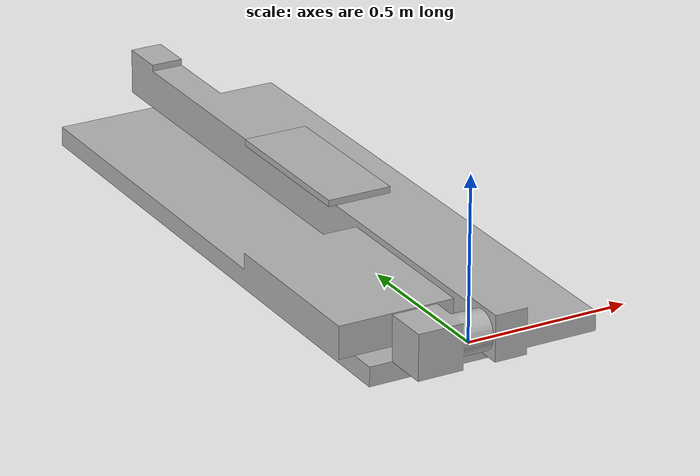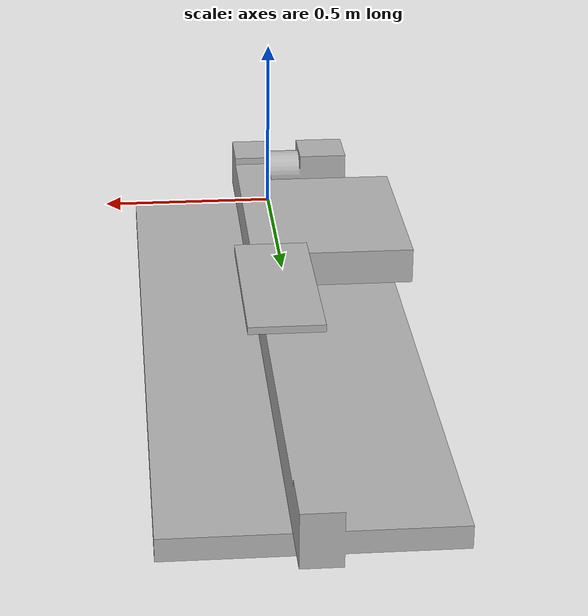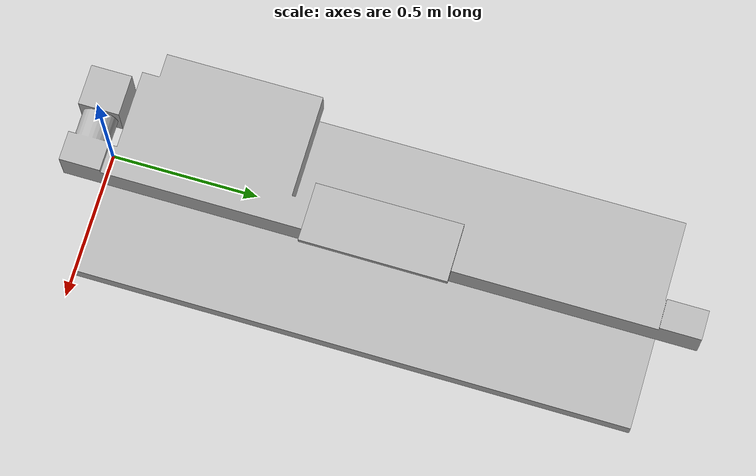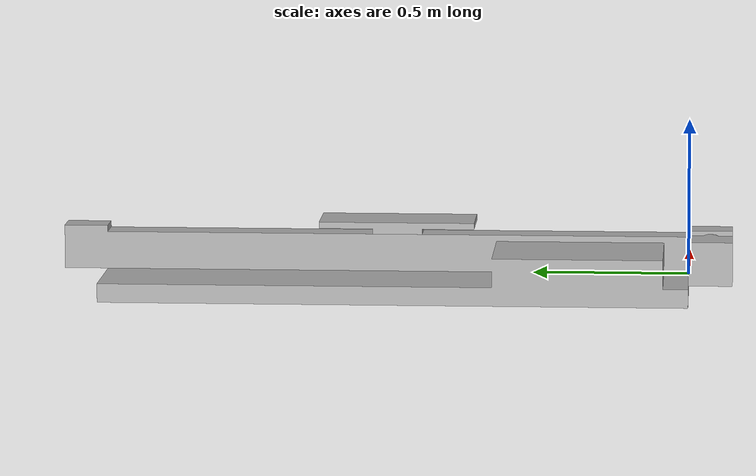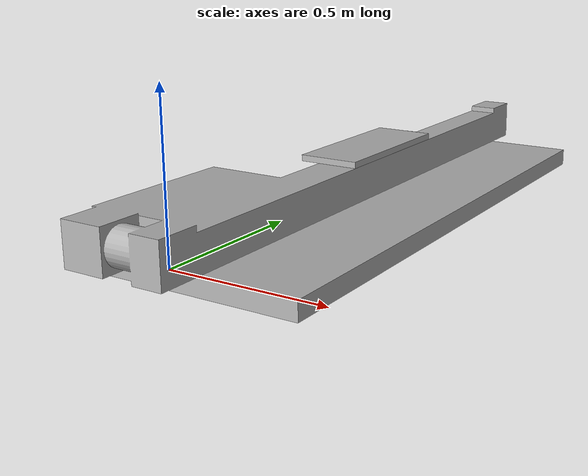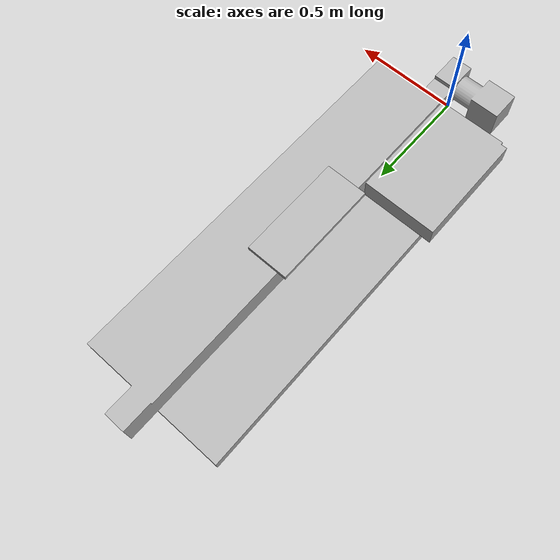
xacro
<?xml version="1.0" ?>
<robot name="railBot" xmlns:xacro="http://www.ros.org/wiki/xacro">

<xacro:include filename="$(find railBot_description)/urdf/materials.xacro" />
<xacro:include filename="$(find railBot_description)/urdf/railBot.trans" />
<xacro:include filename="$(find railBot_description)/urdf/railBot.gazebo" />
<link name="base_link">
  <inertial>
    <origin xyz="0.06305118662696127 0.990620741894074 0.015573740724013305" rpy="0 0 0"/>
    <mass value="1028.3668437650365"/>
    <inertia ixx="347.553163" iyy="39.502263" izz="382.044817" ixy="-21.605589" iyz="6.247537" ixz="2.013385"/>
  </inertial>
  <visual>
    <origin xyz="0 0 0" rpy="0 0 0"/>
    <geometry>
      <mesh filename="package://railBot_description/meshes/base_link.stl" scale="0.001 0.001 0.001"/>
    </geometry>
    <material name="silver"/>
  </visual>
  <collision>
    <origin xyz="0 0 0" rpy="0 0 0"/>
    <geometry>
      <mesh filename="package://railBot_description/meshes/base_link.stl" scale="0.001 0.001 0.001"/>
    </geometry>
  </collision>
</link>

<link name="slider_1">
  <inertial>
    <origin xyz="-0.002646320166134794 -0.1679802996301114 0.018990671437047302" rpy="0 0 0"/>
    <mass value="18.8400004491806"/>
    <inertia ixx="0.335794" iyy="0.056962" izz="0.388732" ixy="0.0" iyz="0.0" ixz="0.0"/>
  </inertial>
  <visual>
    <origin xyz="-0.105293 -1.275961 -0.144519" rpy="0 0 0"/>
    <geometry>
      <mesh filename="package://railBot_description/meshes/slider_1.stl" scale="0.001 0.001 0.001"/>
    </geometry>
    <material name="silver"/>
  </visual>
  <collision>
    <origin xyz="-0.105293 -1.275961 -0.144519" rpy="0 0 0"/>
    <geometry>
      <mesh filename="package://railBot_description/meshes/slider_1.stl" scale="0.001 0.001 0.001"/>
    </geometry>
  </collision>
</link>

<joint name="Slider2" type="prismatic">
  <origin xyz="0.105293 1.275961 0.144519" rpy="0 0 0"/>
  <parent link="base_link"/>
  <child link="slider_1"/>
  <axis xyz="0.0 1.0 0.0"/>
  <limit upper="0.0" lower="0.0" effort="100" velocity="100"/>
</joint>

</robot>

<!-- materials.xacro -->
<robot name="railBot" xmlns:xacro="http://www.ros.org/wiki/xacro" >

<material name="silver">
  <color rgba="0.700 0.700 0.700 1.000"/>
</material>

</robot>

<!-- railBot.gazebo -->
<robot name="railBot" xmlns:xacro="http://www.ros.org/wiki/xacro" >

<xacro:property name="body_color" value="Gazebo/Silver" />

<gazebo>
  <plugin name="control" filename="libgazebo_ros_control.so"/>
</gazebo>
<gazebo reference="base_link">
  <material>${body_color}</material>
  <mu1>0.2</mu1>
  <mu2>0.2</mu2>
  <selfCollide>true</selfCollide>
  <gravity>true</gravity>
</gazebo>

<gazebo reference="slider_1">
  <material>${body_color}</material>
  <mu1>0.2</mu1>
  <mu2>0.2</mu2>
  <selfCollide>true</selfCollide>
</gazebo>

</robot>
